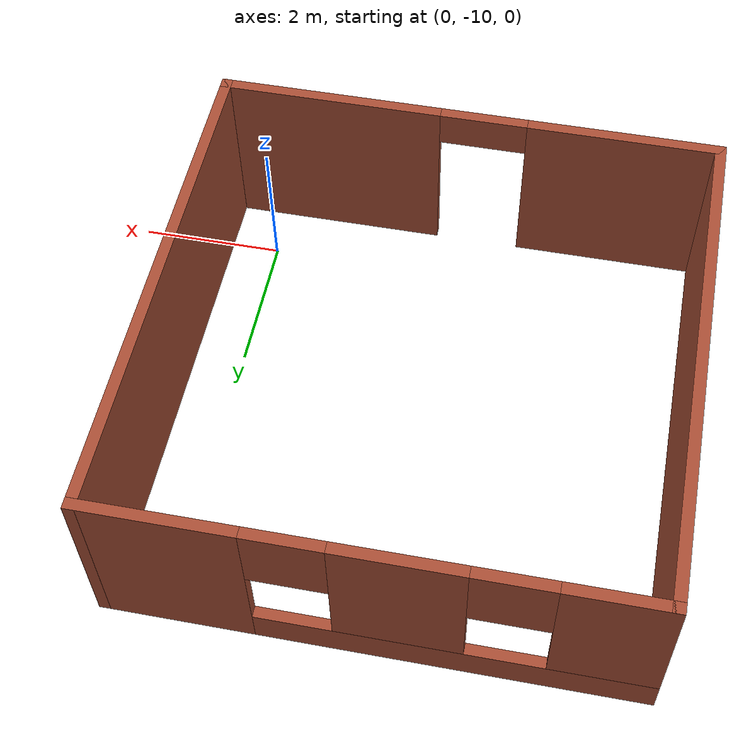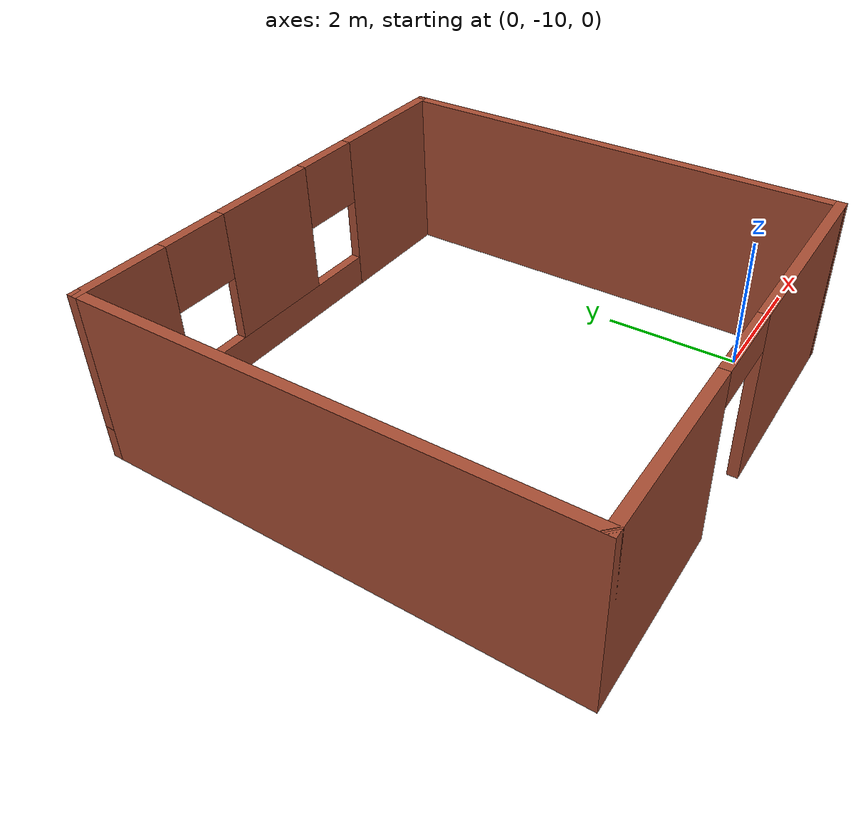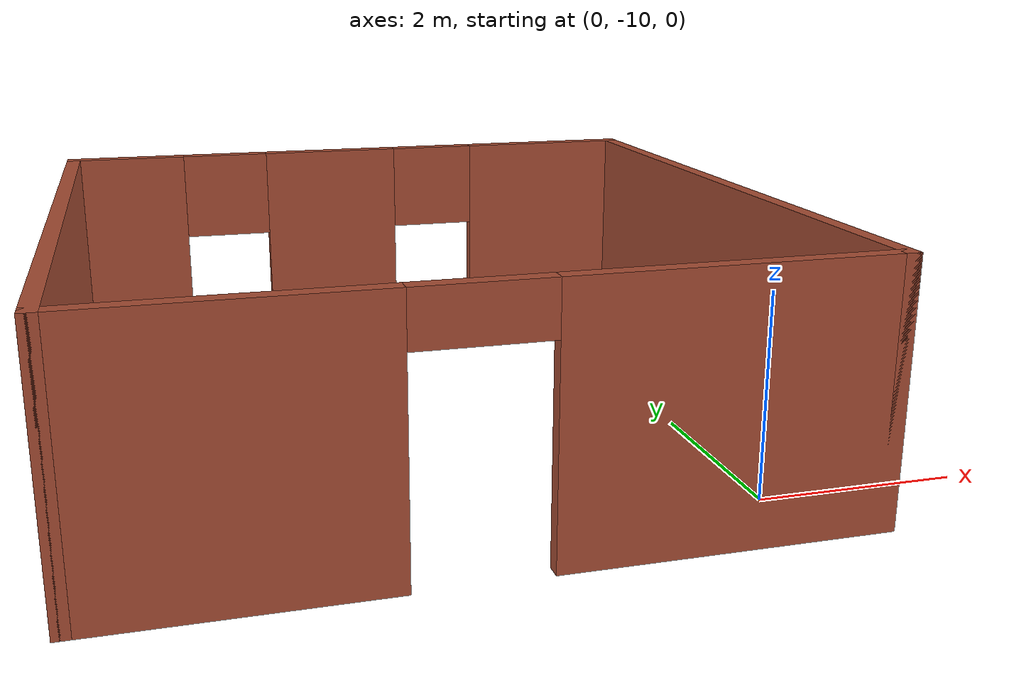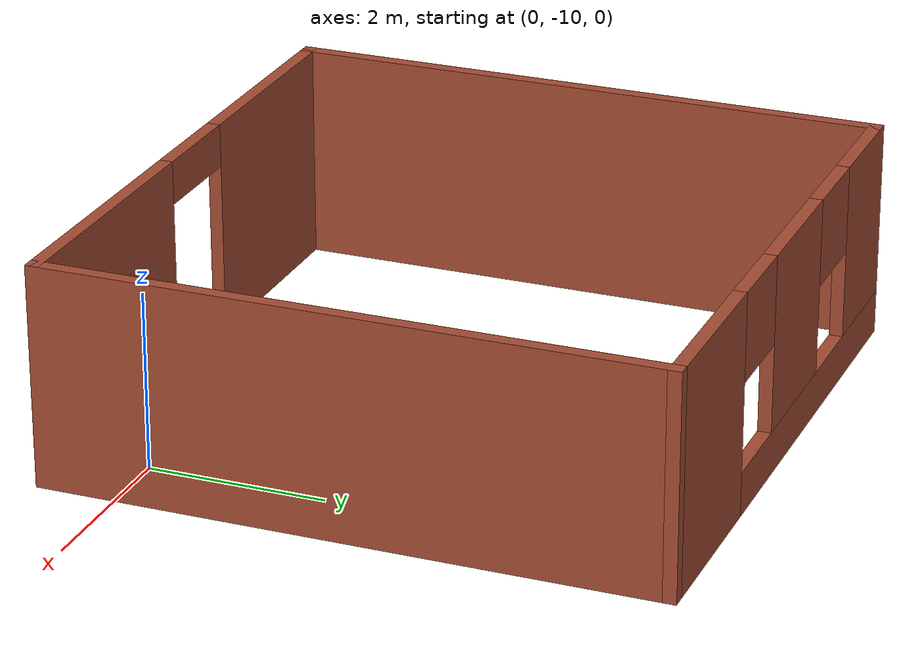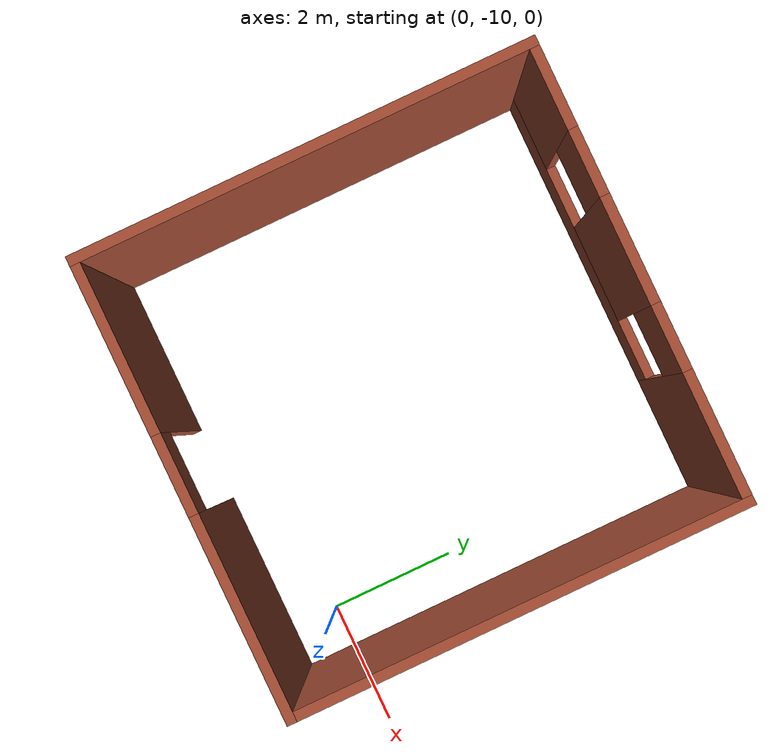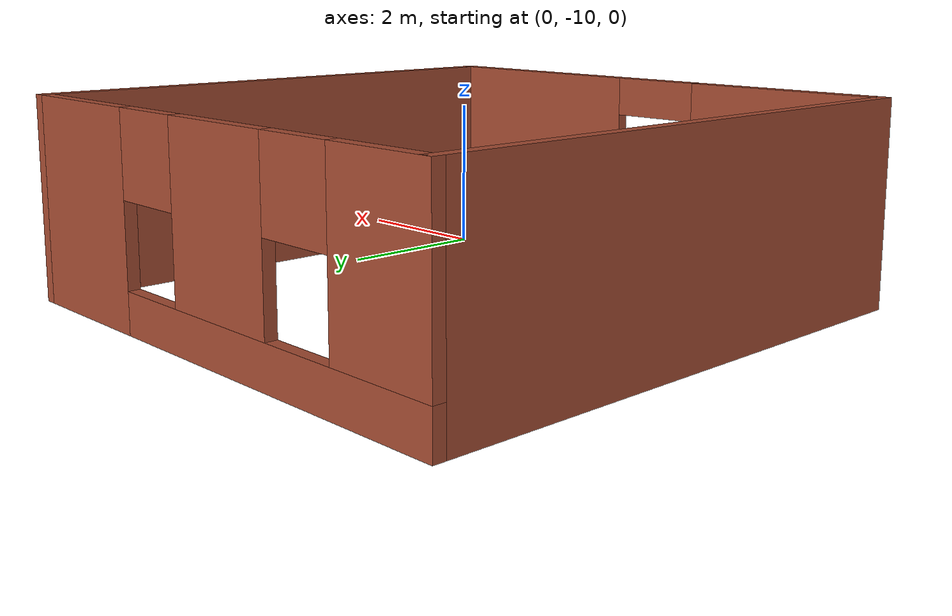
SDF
<?xml version='1.0'?>
<sdf version='1.6'>
  <model name='room'>
    <pose frame=''>-2.67798 -7.40587 0 0 -0 0</pose>
    <link name='Wall_11'>
      <collision name='Wall_11_Collision'>
        <geometry>
          <box>
            <size>7 0.15 2.5</size>
          </box>
        </geometry>
        <pose frame=''>0 0 1.25 0 -0 0</pose>
      </collision>
      <visual name='Wall_11_Visual'>
        <pose frame=''>0 0 1.25 0 -0 0</pose>
        <geometry>
          <box>
            <size>7 0.15 2.5</size>
          </box>
        </geometry>
        <material>
          <script>
            <uri>file://media/materials/scripts/gazebo.material</uri>
            <name>Gazebo/Bricks</name>
          </script>
          <ambient>0.996078 0.47451 0.0196078 1</ambient>
        </material>
        <meta>
          <layer>0</layer>
        </meta>
      </visual>
      <pose frame=''>-3.425 0 0 0 -0 -1.5708</pose>
    </link>
    <link name='Wall_7'>
      <pose frame=''>-0 -3.425 0 0 -0 0</pose>
      <visual name='Wall_7_Visual_0'>
        <pose frame=''>-2.15492 0 1.25 0 -0 0</pose>
        <geometry>
          <box>
            <size>2.69015 0.15 2.5</size>
          </box>
        </geometry>
        <material>
          <script>
            <uri>file://media/materials/scripts/gazebo.material</uri>
            <name>Gazebo/Bricks</name>
          </script>
          <ambient>0.760784 0.662745 0.627451 1</ambient>
        </material>
        <meta>
          <layer>0</layer>
        </meta>
      </visual>
      <collision name='Wall_7_Collision_0'>
        <geometry>
          <box>
            <size>2.69015 0.15 2.5</size>
          </box>
        </geometry>
        <pose frame=''>-2.15492 0 1.25 0 -0 0</pose>
      </collision>
      <visual name='Wall_7_Visual_1'>
        <pose frame=''>1.94508 0 1.25 0 -0 0</pose>
        <geometry>
          <box>
            <size>3.10985 0.15 2.5</size>
          </box>
        </geometry>
        <material>
          <script>
            <uri>file://media/materials/scripts/gazebo.material</uri>
            <name>Gazebo/Bricks</name>
          </script>
          <ambient>0.760784 0.662745 0.627451 1</ambient>
        </material>
        <meta>
          <layer>0</layer>
        </meta>
      </visual>
      <collision name='Wall_7_Collision_1'>
        <geometry>
          <box>
            <size>3.10985 0.15 2.5</size>
          </box>
        </geometry>
        <pose frame=''>1.94508 0 1.25 0 -0 0</pose>
      </collision>
      <visual name='Wall_7_Visual_2'>
        <pose frame=''>-0.209846 0 2.25 0 -0 0</pose>
        <geometry>
          <box>
            <size>1.2 0.15 0.5</size>
          </box>
        </geometry>
        <material>
          <script>
            <uri>file://media/materials/scripts/gazebo.material</uri>
            <name>Gazebo/Bricks</name>
          </script>
          <ambient>0.760784 0.662745 0.627451 1</ambient>
        </material>
        <meta>
          <layer>0</layer>
        </meta>
      </visual>
      <collision name='Wall_7_Collision_2'>
        <geometry>
          <box>
            <size>1.2 0.15 0.5</size>
          </box>
        </geometry>
        <pose frame=''>-0.209846 0 2.25 0 -0 0</pose>
      </collision>
    </link>
    <link name='Wall_8'>
      <collision name='Wall_8_Collision'>
        <geometry>
          <box>
            <size>7 0.15 2.5</size>
          </box>
        </geometry>
        <pose frame=''>0 0 1.25 0 -0 0</pose>
      </collision>
      <visual name='Wall_8_Visual'>
        <pose frame=''>0 0 1.25 0 -0 0</pose>
        <geometry>
          <box>
            <size>7 0.15 2.5</size>
          </box>
        </geometry>
        <material>
          <script>
            <uri>file://media/materials/scripts/gazebo.material</uri>
            <name>Gazebo/Bricks</name>
          </script>
          <ambient>1 0.764706 0.305882 1</ambient>
        </material>
        <meta>
          <layer>0</layer>
        </meta>
      </visual>
      <pose frame=''>3.425 0 0 0 -0 1.5708</pose>
    </link>
    <link name='Wall_9'>
      <pose frame=''>-0 3.425 0 0 -0 3.14159</pose>
      <visual name='Wall_9_Visual_0'>
        <pose frame=''>-2.48491 0 1.25 0 -0 0</pose>
        <geometry>
          <box>
            <size>2.03018 0.15 2.5</size>
          </box>
        </geometry>
        <material>
          <script>
            <uri>file://media/materials/scripts/gazebo.material</uri>
            <name>Gazebo/Bricks</name>
          </script>
          <ambient>0.435294 0.796078 0.67451 1</ambient>
        </material>
        <meta>
          <layer>0</layer>
        </meta>
      </visual>
      <collision name='Wall_9_Collision_0'>
        <geometry>
          <box>
            <size>2.03018 0.15 2.5</size>
          </box>
        </geometry>
        <pose frame=''>-2.48491 0 1.25 0 -0 0</pose>
      </collision>
      <visual name='Wall_9_Visual_1'>
        <pose frame=''>1.01509 0 0.25 0 -0 0</pose>
        <geometry>
          <box>
            <size>4.96981 0.15 0.5</size>
          </box>
        </geometry>
        <material>
          <script>
            <uri>file://media/materials/scripts/gazebo.material</uri>
            <name>Gazebo/Bricks</name>
          </script>
          <ambient>0.435294 0.796078 0.67451 1</ambient>
        </material>
        <meta>
          <layer>0</layer>
        </meta>
      </visual>
      <collision name='Wall_9_Collision_1'>
        <geometry>
          <box>
            <size>4.96981 0.15 0.5</size>
          </box>
        </geometry>
        <pose frame=''>1.01509 0 0.25 0 -0 0</pose>
      </collision>
      <visual name='Wall_9_Visual_2'>
        <pose frame=''>0.337064 0 1.5 0 -0 0</pose>
        <geometry>
          <box>
            <size>1.61376 0.15 2</size>
          </box>
        </geometry>
        <material>
          <script>
            <uri>file://media/materials/scripts/gazebo.material</uri>
            <name>Gazebo/Bricks</name>
          </script>
          <ambient>0.435294 0.796078 0.67451 1</ambient>
        </material>
        <meta>
          <layer>0</layer>
        </meta>
      </visual>
      <collision name='Wall_9_Collision_2'>
        <geometry>
          <box>
            <size>1.61376 0.15 2</size>
          </box>
        </geometry>
        <pose frame=''>0.337064 0 1.5 0 -0 0</pose>
      </collision>
      <visual name='Wall_9_Visual_3'>
        <pose frame=''>2.82197 0 1.5 0 -0 0</pose>
        <geometry>
          <box>
            <size>1.35606 0.15 2</size>
          </box>
        </geometry>
        <material>
          <script>
            <uri>file://media/materials/scripts/gazebo.material</uri>
            <name>Gazebo/Bricks</name>
          </script>
          <ambient>0.435294 0.796078 0.67451 1</ambient>
        </material>
        <meta>
          <layer>0</layer>
        </meta>
      </visual>
      <collision name='Wall_9_Collision_3'>
        <geometry>
          <box>
            <size>1.35606 0.15 2</size>
          </box>
        </geometry>
        <pose frame=''>2.82197 0 1.5 0 -0 0</pose>
      </collision>
      <visual name='Wall_9_Visual_4'>
        <pose frame=''>-0.969815 0 2 0 -0 0</pose>
        <geometry>
          <box>
            <size>1 0.15 1</size>
          </box>
        </geometry>
        <material>
          <script>
            <uri>file://media/materials/scripts/gazebo.material</uri>
            <name>Gazebo/Bricks</name>
          </script>
          <ambient>0.435294 0.796078 0.67451 1</ambient>
        </material>
        <meta>
          <layer>0</layer>
        </meta>
      </visual>
      <collision name='Wall_9_Collision_4'>
        <geometry>
          <box>
            <size>1 0.15 1</size>
          </box>
        </geometry>
        <pose frame=''>-0.969815 0 2 0 -0 0</pose>
      </collision>
      <visual name='Wall_9_Visual_5'>
        <pose frame=''>1.64394 0 2 0 -0 0</pose>
        <geometry>
          <box>
            <size>1 0.15 1</size>
          </box>
        </geometry>
        <material>
          <script>
            <uri>file://media/materials/scripts/gazebo.material</uri>
            <name>Gazebo/Bricks</name>
          </script>
          <ambient>0.435294 0.796078 0.67451 1</ambient>
        </material>
        <meta>
          <layer>0</layer>
        </meta>
      </visual>
      <collision name='Wall_9_Collision_5'>
        <geometry>
          <box>
            <size>1 0.15 1</size>
          </box>
        </geometry>
        <pose frame=''>1.64394 0 2 0 -0 0</pose>
      </collision>
    </link>
    <static>1</static>
  </model>
</sdf>
